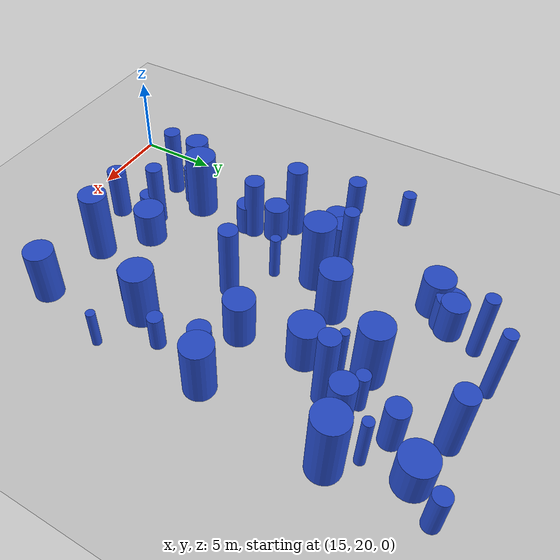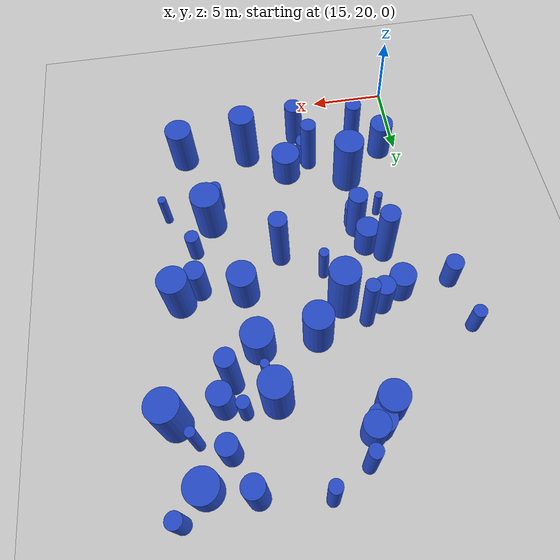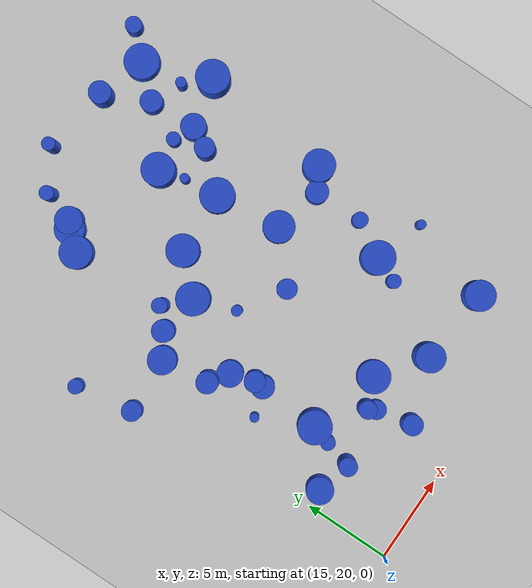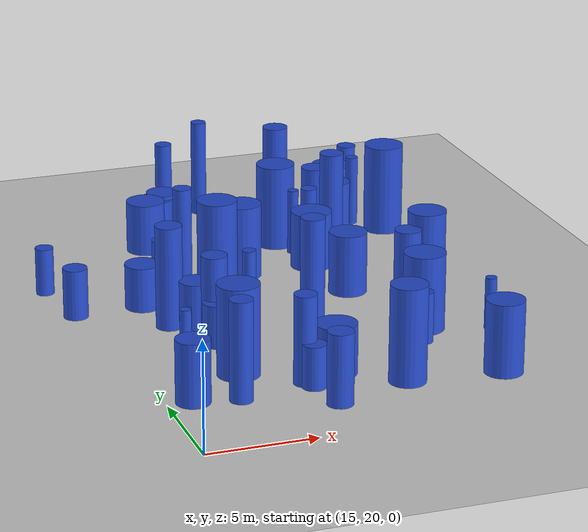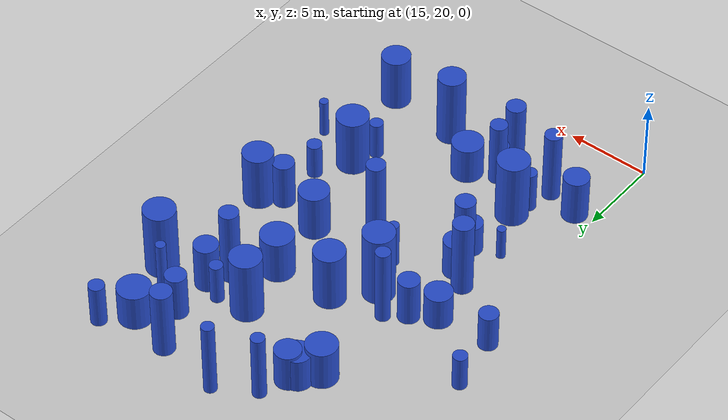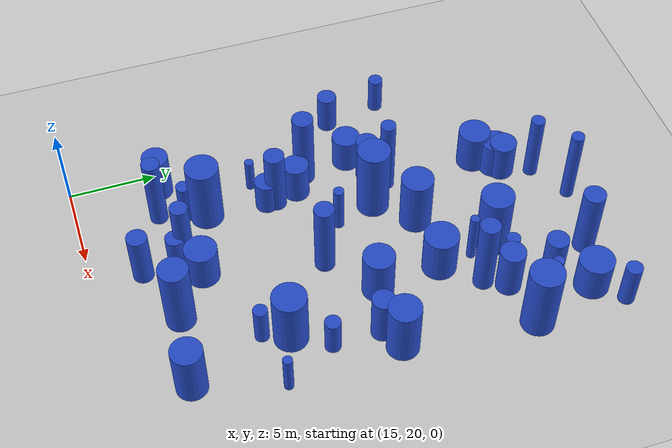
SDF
<sdf version="1.6">
 <world name="default">
  <model name="ground_plane">
   <static>1</static>
   <link name="link">
    <collision name="collision">
     <geometry><plane><normal>0 0 1</normal><size>100 100</size></plane></geometry>
     <surface><friction><ode><mu>100</mu><mu2>50</mu2></ode></friction></surface>
    </collision>
    <visual name="visual">
     <cast_shadows>0</cast_shadows>
     <geometry><plane><normal>0 0 1</normal><size>100 100</size></plane></geometry>
     <material>
      <script><uri>file://media/materials/scripts/gazebo.material</uri><name>Gazebo/Grey</name></script>
     </material>
    </visual>
   </link>
  </model>
  <model name="10">
   <static>0</static>
   <link name="link">
    <inertial>
     <mass>2</mass>
     <inertia><ixx>3.37741</ixx><ixy>0</ixy><ixz>0</ixz><iyy>3.37741</iyy><iyz>0</iyz><izz>0.399415</izz></inertia>
    </inertial>
    <collision name="collision">
     <geometry><cylinder><length>4.36649</length><radius>0.631993</radius></cylinder></geometry>
     <surface><contact><collide_without_contact>1</collide_without_contact></contact></surface>
    </collision>
    <visual name="visual">
     <geometry><cylinder><length>4.36649</length><radius>0.631993</radius></cylinder></geometry>
     <material>
      <script><uri>file://media/materials/scripts/gazebo.material</uri><name>Gazebo/Blue</name></script>
     </material>
    </visual>
    <gravity>0</gravity>
   </link>
   <pose>27.4503 47.0755 2.18325 0 -0 0</pose>
  </model>
  <model name="11">
   <static>0</static>
   <link name="link">
    <inertial>
     <mass>2</mass>
     <inertia><ixx>1.88105</ixx><ixy>0</ixy><ixz>0</ixz><iyy>1.88105</iyy><iyz>0</iyz><izz>0.812984</izz></inertia>
    </inertial>
    <collision name="collision">
     <geometry><cylinder><length>2.97445</length><radius>0.901656</radius></cylinder></geometry>
     <surface><contact><collide_without_contact>1</collide_without_contact></contact></surface>
    </collision>
    <visual name="visual">
     <geometry><cylinder><length>2.97445</length><radius>0.901656</radius></cylinder></geometry>
     <material>
      <script><uri>file://media/materials/scripts/gazebo.material</uri><name>Gazebo/Blue</name></script>
     </material>
    </visual>
    <gravity>0</gravity>
   </link>
   <pose>26.8547 34.9896 1.48722 0 -0 0</pose>
  </model>
  <model name="13">
   <static>0</static>
   <link name="link">
    <inertial>
     <mass>2</mass>
     <inertia><ixx>2.71597</ixx><ixy>0</ixy><ixz>0</ixz><iyy>2.71597</iyy><iyz>0</iyz><izz>0.923373</izz></inertia>
    </inertial>
    <collision name="collision">
     <geometry><cylinder><length>3.67773</length><radius>0.960923</radius></cylinder></geometry>
     <surface><contact><collide_without_contact>1</collide_without_contact></contact></surface>
    </collision>
    <visual name="visual">
     <geometry><cylinder><length>3.67773</length><radius>0.960923</radius></cylinder></geometry>
     <material>
      <script><uri>file://media/materials/scripts/gazebo.material</uri><name>Gazebo/Blue</name></script>
     </material>
    </visual>
    <gravity>0</gravity>
   </link>
   <pose>28.4623 29.5513 1.83887 0 -0 0</pose>
  </model>
  <model name="16">
   <static>0</static>
   <link name="link">
    <inertial>
     <mass>2</mass>
     <inertia><ixx>1.57186</ixx><ixy>0</ixy><ixz>0</ixz><iyy>1.57186</iyy><iyz>0</iyz><izz>0.39585</izz></inertia>
    </inertial>
    <collision name="collision">
     <geometry><cylinder><length>2.87117</length><radius>0.629166</radius></cylinder></geometry>
     <surface><contact><collide_without_contact>1</collide_without_contact></contact></surface>
    </collision>
    <visual name="visual">
     <geometry><cylinder><length>2.87117</length><radius>0.629166</radius></cylinder></geometry>
     <material>
      <script><uri>file://media/materials/scripts/gazebo.material</uri><name>Gazebo/Blue</name></script>
     </material>
    </visual>
    <gravity>0</gravity>
   </link>
   <pose>28.6502 44.5978 1.43558 0 -0 0</pose>
  </model>
  <model name="27">
   <static>0</static>
   <link name="link">
    <inertial>
     <mass>2</mass>
     <inertia><ixx>3.29031</ixx><ixy>0</ixy><ixz>0</ixz><iyy>3.29031</iyy><iyz>0</iyz><izz>0.876091</izz></inertia>
    </inertial>
    <collision name="collision">
     <geometry><cylinder><length>4.13686</length><radius>0.935998</radius></cylinder></geometry>
     <surface><contact><collide_without_contact>1</collide_without_contact></contact></surface>
    </collision>
    <visual name="visual">
     <geometry><cylinder><length>4.13686</length><radius>0.935998</radius></cylinder></geometry>
     <material>
      <script><uri>file://media/materials/scripts/gazebo.material</uri><name>Gazebo/Blue</name></script>
     </material>
    </visual>
    <gravity>0</gravity>
   </link>
   <pose>25.7568 42.1534 2.06843 0 -0 0</pose>
  </model>
  <model name="28">
   <static>0</static>
   <link name="link">
    <inertial>
     <mass>2</mass>
     <inertia><ixx>3.70127</ixx><ixy>0</ixy><ixz>0</ixz><iyy>3.70127</iyy><iyz>0</iyz><izz>0.908045</izz></inertia>
    </inertial>
    <collision name="collision">
     <geometry><cylinder><length>4.41401</length><radius>0.952914</radius></cylinder></geometry>
     <surface><contact><collide_without_contact>1</collide_without_contact></contact></surface>
    </collision>
    <visual name="visual">
     <geometry><cylinder><length>4.41401</length><radius>0.952914</radius></cylinder></geometry>
     <material>
      <script><uri>file://media/materials/scripts/gazebo.material</uri><name>Gazebo/Blue</name></script>
     </material>
    </visual>
    <gravity>0</gravity>
   </link>
   <pose>31.5585 42.4736 2.20701 0 -0 0</pose>
  </model>
  <model name="31">
   <static>0</static>
   <link name="link">
    <inertial>
     <mass>2</mass>
     <inertia>
      <ixx>0.960927</ixx>
      <ixy>0</ixy>
      <ixz>0</ixz>
      <iyy>0.960927</iyy>
      <iyz>0</iyz>
      <izz>0.413143</izz>
     </inertia>
    </inertial>
    <collision name="collision">
     <geometry><cylinder><length>2.12747</length><radius>0.642762</radius></cylinder></geometry>
     <surface><contact><collide_without_contact>1</collide_without_contact></contact></surface>
    </collision>
    <visual name="visual">
     <geometry><cylinder><length>2.12747</length><radius>0.642762</radius></cylinder></geometry>
     <material>
      <script><uri>file://media/materials/scripts/gazebo.material</uri><name>Gazebo/Blue</name></script>
     </material>
    </visual>
    <gravity>0</gravity>
   </link>
   <pose>29.9876 46.2303 1.06374 0 -0 0</pose>
  </model>
  <model name="39">
   <static>0</static>
   <link name="link">
    <inertial>
     <mass>2</mass>
     <inertia><ixx>1.53544</ixx><ixy>0</ixy><ixz>0</ixz><iyy>1.53544</iyy><iyz>0</iyz><izz>0.411838</izz></inertia>
    </inertial>
    <collision name="collision">
     <geometry><cylinder><length>2.82438</length><radius>0.641746</radius></cylinder></geometry>
     <surface><contact><collide_without_contact>1</collide_without_contact></contact></surface>
    </collision>
    <visual name="visual">
     <geometry><cylinder><length>2.82438</length><radius>0.641746</radius></cylinder></geometry>
     <material>
      <script><uri>file://media/materials/scripts/gazebo.material</uri><name>Gazebo/Blue</name></script>
     </material>
    </visual>
    <gravity>0</gravity>
   </link>
   <pose>18.6007 37.0653 1.41219 0 -0 0</pose>
  </model>
  <model name="42">
   <static>0</static>
   <link name="link">
    <inertial>
     <mass>2</mass>
     <inertia><ixx>2.01453</ixx><ixy>0</ixy><ixz>0</ixz><iyy>2.01453</iyy><iyz>0</iyz><izz>0.344549</izz></inertia>
    </inertial>
    <collision name="collision">
     <geometry><cylinder><length>3.32468</length><radius>0.586983</radius></cylinder></geometry>
     <surface><contact><collide_without_contact>1</collide_without_contact></contact></surface>
    </collision>
    <visual name="visual">
     <geometry><cylinder><length>3.32468</length><radius>0.586983</radius></cylinder></geometry>
     <material>
      <script><uri>file://media/materials/scripts/gazebo.material</uri><name>Gazebo/Blue</name></script>
     </material>
    </visual>
    <gravity>0</gravity>
   </link>
   <pose>21.9562 22.9154 1.66234 0 -0 0</pose>
  </model>
  <model name="47">
   <static>0</static>
   <link name="link">
    <inertial>
     <mass>2</mass>
     <inertia><ixx>2.29041</ixx><ixy>0</ixy><ixz>0</ixz><iyy>2.29041</iyy><iyz>0</iyz><izz>0.757429</izz></inertia>
    </inertial>
    <collision name="collision">
     <geometry><cylinder><length>3.38677</length><radius>0.870304</radius></cylinder></geometry>
     <surface><contact><collide_without_contact>1</collide_without_contact></contact></surface>
    </collision>
    <visual name="visual">
     <geometry><cylinder><length>3.38677</length><radius>0.870304</radius></cylinder></geometry>
     <material>
      <script><uri>file://media/materials/scripts/gazebo.material</uri><name>Gazebo/Blue</name></script>
     </material>
    </visual>
    <gravity>0</gravity>
   </link>
   <pose>29.8515 23.8039 1.69338 0 -0 0</pose>
  </model>
  <model name="48">
   <static>0</static>
   <link name="link">
    <inertial>
     <mass>2</mass>
     <inertia>
      <ixx>0.820157</ixx>
      <ixy>0</ixy>
      <ixz>0</ixz>
      <iyy>0.820157</iyy>
      <iyz>0</iyz>
      <izz>0.29591</izz>
     </inertia>
    </inertial>
    <collision name="collision">
     <geometry><cylinder><length>2.00829</length><radius>0.543976</radius></cylinder></geometry>
     <surface><contact><collide_without_contact>1</collide_without_contact></contact></surface>
    </collision>
    <visual name="visual">
     <geometry><cylinder><length>2.00829</length><radius>0.543976</radius></cylinder></geometry>
     <material>
      <script><uri>file://media/materials/scripts/gazebo.material</uri><name>Gazebo/Blue</name></script>
     </material>
    </visual>
    <gravity>0</gravity>
   </link>
   <pose>21.5362 24.945 1.00414 0 -0 0</pose>
  </model>
  <model name="58">
   <static>0</static>
   <link name="link">
    <inertial>
     <mass>2</mass>
     <inertia>
      <ixx>0.763986</ixx>
      <ixy>0</ixy>
      <ixz>0</ixz>
      <iyy>0.763986</iyy>
      <iyz>0</iyz>
      <izz>0.0695727</izz>
     </inertia>
    </inertial>
    <collision name="collision">
     <geometry><cylinder><length>2.0917</length><radius>0.263766</radius></cylinder></geometry>
     <surface><contact><collide_without_contact>1</collide_without_contact></contact></surface>
    </collision>
    <visual name="visual">
     <geometry><cylinder><length>2.0917</length><radius>0.263766</radius></cylinder></geometry>
     <material>
      <script><uri>file://media/materials/scripts/gazebo.material</uri><name>Gazebo/Blue</name></script>
     </material>
    </visual>
    <gravity>0</gravity>
   </link>
   <pose>17.4453 30.2732 1.04585 0 -0 0</pose>
  </model>
  <model name="59">
   <static>0</static>
   <link name="link">
    <inertial>
     <mass>2</mass>
     <inertia><ixx>4.03228</ixx><ixy>0</ixy><ixz>0</ixz><iyy>4.03228</iyy><iyz>0</iyz><izz>0.883964</izz></inertia>
    </inertial>
    <collision name="collision">
     <geometry><cylinder><length>4.64131</length><radius>0.940194</radius></cylinder></geometry>
     <surface><contact><collide_without_contact>1</collide_without_contact></contact></surface>
    </collision>
    <visual name="visual">
     <geometry><cylinder><length>4.64131</length><radius>0.940194</radius></cylinder></geometry>
     <material>
      <script><uri>file://media/materials/scripts/gazebo.material</uri><name>Gazebo/Blue</name></script>
     </material>
    </visual>
    <gravity>0</gravity>
   </link>
   <pose>20.989 36.6588 2.32066 0 -0 0</pose>
  </model>
  <model name="62">
   <static>0</static>
   <link name="link">
    <inertial>
     <mass>2</mass>
     <inertia>
      <ixx>1.43756</ixx>
      <ixy>0</ixy>
      <ixz>0</ixz>
      <iyy>1.43756</iyy>
      <iyz>0</iyz>
      <izz>0.0997428</izz>
     </inertia>
    </inertial>
    <collision name="collision">
     <geometry><cylinder><length>2.8855</length><radius>0.315821</radius></cylinder></geometry>
     <surface><contact><collide_without_contact>1</collide_without_contact></contact></surface>
    </collision>
    <visual name="visual">
     <geometry><cylinder><length>2.8855</length><radius>0.315821</radius></cylinder></geometry>
     <material>
      <script><uri>file://media/materials/scripts/gazebo.material</uri><name>Gazebo/Blue</name></script>
     </material>
    </visual>
    <gravity>0</gravity>
   </link>
   <pose>21.7733 34.3418 1.44275 0 -0 0</pose>
  </model>
  <model name="63">
   <static>0</static>
   <link name="link">
    <inertial>
     <mass>2</mass>
     <inertia><ixx>1.03289</ixx><ixy>0</ixy><ixz>0</ixz><iyy>1.03289</iyy><iyz>0</iyz><izz>0.164469</izz></inertia>
    </inertial>
    <collision name="collision">
     <geometry><cylinder><length>2.38829</length><radius>0.405548</radius></cylinder></geometry>
     <surface><contact><collide_without_contact>1</collide_without_contact></contact></surface>
    </collision>
    <visual name="visual">
     <geometry><cylinder><length>2.38829</length><radius>0.405548</radius></cylinder></geometry>
     <material>
      <script><uri>file://media/materials/scripts/gazebo.material</uri><name>Gazebo/Blue</name></script>
     </material>
    </visual>
    <gravity>0</gravity>
   </link>
   <pose>27.9011 28.096 1.19414 0 -0 0</pose>
  </model>
  <model name="68">
   <static>0</static>
   <link name="link">
    <inertial>
     <mass>2</mass>
     <inertia><ixx>1.17766</ixx><ixy>0</ixy><ixz>0</ixz><iyy>1.17766</iyy><iyz>0</iyz><izz>0.157599</izz></inertia>
    </inertial>
    <collision name="collision">
     <geometry><cylinder><length>2.56772</length><radius>0.396987</radius></cylinder></geometry>
     <surface><contact><collide_without_contact>1</collide_without_contact></contact></surface>
    </collision>
    <visual name="visual">
     <geometry><cylinder><length>2.56772</length><radius>0.396987</radius></cylinder></geometry>
     <material>
      <script><uri>file://media/materials/scripts/gazebo.material</uri><name>Gazebo/Blue</name></script>
     </material>
    </visual>
    <gravity>0</gravity>
   </link>
   <pose>27.6168 42.4632 1.28386 0 -0 0</pose>
  </model>
  <model name="70">
   <static>0</static>
   <link name="link">
    <inertial>
     <mass>2</mass>
     <inertia>
      <ixx>2.04255</ixx>
      <ixy>0</ixy>
      <ixz>0</ixz>
      <iyy>2.04255</iyy>
      <iyz>0</iyz>
      <izz>0.0888972</izz>
     </inertia>
    </inertial>
    <collision name="collision">
     <geometry><cylinder><length>3.46246</length><radius>0.298156</radius></cylinder></geometry>
     <surface><contact><collide_without_contact>1</collide_without_contact></contact></surface>
    </collision>
    <visual name="visual">
     <geometry><cylinder><length>3.46246</length><radius>0.298156</radius></cylinder></geometry>
     <material>
      <script><uri>file://media/materials/scripts/gazebo.material</uri><name>Gazebo/Blue</name></script>
     </material>
    </visual>
    <gravity>0</gravity>
   </link>
   <pose>30.3781 43.7936 1.73123 0 -0 0</pose>
  </model>
  <model name="77">
   <static>0</static>
   <link name="link">
    <inertial>
     <mass>2</mass>
     <inertia>
      <ixx>1.03563</ixx>
      <ixy>0</ixy>
      <ixz>0</ixz>
      <iyy>1.03563</iyy>
      <iyz>0</iyz>
      <izz>0.0714737</izz>
     </inertia>
    </inertial>
    <collision name="collision">
     <geometry><cylinder><length>2.44936</length><radius>0.267346</radius></cylinder></geometry>
     <surface><contact><collide_without_contact>1</collide_without_contact></contact></surface>
    </collision>
    <visual name="visual">
     <geometry><cylinder><length>2.44936</length><radius>0.267346</radius></cylinder></geometry>
     <material>
      <script><uri>file://media/materials/scripts/gazebo.material</uri><name>Gazebo/Blue</name></script>
     </material>
    </visual>
    <gravity>0</gravity>
   </link>
   <pose>31.3145 28.5993 1.22468 0 -0 0</pose>
  </model>
  <model name="79">
   <static>0</static>
   <link name="link">
    <inertial>
     <mass>2</mass>
     <inertia><ixx>4.14774</ixx><ixy>0</ixy><ixz>0</ixz><iyy>4.14774</iyy><iyz>0</iyz><izz>0.331345</izz></inertia>
    </inertial>
    <collision name="collision">
     <geometry><cylinder><length>4.88799</length><radius>0.575626</radius></cylinder></geometry>
     <surface><contact><collide_without_contact>1</collide_without_contact></contact></surface>
    </collision>
    <visual name="visual">
     <geometry><cylinder><length>4.88799</length><radius>0.575626</radius></cylinder></geometry>
     <material>
      <script><uri>file://media/materials/scripts/gazebo.material</uri><name>Gazebo/Blue</name></script>
     </material>
    </visual>
    <gravity>0</gravity>
   </link>
   <pose>28.1269 40.6889 2.44399 0 -0 0</pose>
  </model>
  <model name="90">
   <static>0</static>
   <link name="link">
    <inertial>
     <mass>2</mass>
     <inertia><ixx>3.14456</ixx><ixy>0</ixy><ixz>0</ixz><iyy>3.14456</iyy><iyz>0</iyz><izz>0.16502</izz></inertia>
    </inertial>
    <collision name="collision">
     <geometry><cylinder><length>4.28629</length><radius>0.406226</radius></cylinder></geometry>
     <surface><contact><collide_without_contact>1</collide_without_contact></contact></surface>
    </collision>
    <visual name="visual">
     <geometry><cylinder><length>4.28629</length><radius>0.406226</radius></cylinder></geometry>
     <material>
      <script><uri>file://media/materials/scripts/gazebo.material</uri><name>Gazebo/Blue</name></script>
     </material>
    </visual>
    <gravity>0</gravity>
   </link>
   <pose>21.3311 46.4355 2.14315 0 -0 0</pose>
  </model>
  <model name="95">
   <static>0</static>
   <link name="link">
    <inertial>
     <mass>2</mass>
     <inertia><ixx>1.74657</ixx><ixy>0</ixy><ixz>0</ixz><iyy>1.74657</iyy><iyz>0</iyz><izz>0.521545</izz></inertia>
    </inertial>
    <collision name="collision">
     <geometry><cylinder><length>2.98577</length><radius>0.722181</radius></cylinder></geometry>
     <surface><contact><collide_without_contact>1</collide_without_contact></contact></surface>
    </collision>
    <visual name="visual">
     <geometry><cylinder><length>2.98577</length><radius>0.722181</radius></cylinder></geometry>
     <material>
      <script><uri>file://media/materials/scripts/gazebo.material</uri><name>Gazebo/Blue</name></script>
     </material>
    </visual>
    <gravity>0</gravity>
   </link>
   <pose>28.7882 41.9118 1.49288 0 -0 0</pose>
  </model>
  <model name="103">
   <static>0</static>
   <link name="link">
    <inertial>
     <mass>2</mass>
     <inertia><ixx>1.77324</ixx><ixy>0</ixy><ixz>0</ixz><iyy>1.77324</iyy><iyz>0</iyz><izz>0.972228</izz></inertia>
    </inertial>
    <collision name="collision">
     <geometry><cylinder><length>2.77898</length><radius>0.986016</radius></cylinder></geometry>
     <surface><contact><collide_without_contact>1</collide_without_contact></contact></surface>
    </collision>
    <visual name="visual">
     <geometry><cylinder><length>2.77898</length><radius>0.986016</radius></cylinder></geometry>
     <material>
      <script><uri>file://media/materials/scripts/gazebo.material</uri><name>Gazebo/Blue</name></script>
     </material>
    </visual>
    <gravity>0</gravity>
   </link>
   <pose>26.3975 38.7434 1.38949 0 -0 0</pose>
  </model>
  <model name="108">
   <static>0</static>
   <link name="link">
    <inertial>
     <mass>2</mass>
     <inertia>
      <ixx>0.946671</ixx>
      <ixy>0</ixy>
      <ixz>0</ixz>
      <iyy>0.946671</iyy>
      <iyz>0</iyz>
      <izz>0.17945</izz>
     </inertia>
    </inertial>
    <collision name="collision">
     <geometry><cylinder><length>2.26753</length><radius>0.423616</radius></cylinder></geometry>
     <surface><contact><collide_without_contact>1</collide_without_contact></contact></surface>
    </collision>
    <visual name="visual">
     <geometry><cylinder><length>2.26753</length><radius>0.423616</radius></cylinder></geometry>
     <material>
      <script><uri>file://media/materials/scripts/gazebo.material</uri><name>Gazebo/Blue</name></script>
     </material>
    </visual>
    <gravity>0</gravity>
   </link>
   <pose>13.3868 39.3535 1.13376 0 -0 0</pose>
  </model>
  <model name="111">
   <static>0</static>
   <link name="link">
    <inertial>
     <mass>2</mass>
     <inertia><ixx>1.70817</ixx><ixy>0</ixy><ixz>0</ixz><iyy>1.70817</iyy><iyz>0</iyz><izz>0.588369</izz></inertia>
    </inertial>
    <collision name="collision">
     <geometry><cylinder><length>2.91271</length><radius>0.767052</radius></cylinder></geometry>
     <surface><contact><collide_without_contact>1</collide_without_contact></contact></surface>
    </collision>
    <visual name="visual">
     <geometry><cylinder><length>2.91271</length><radius>0.767052</radius></cylinder></geometry>
     <material>
      <script><uri>file://media/materials/scripts/gazebo.material</uri><name>Gazebo/Blue</name></script>
     </material>
    </visual>
    <gravity>0</gravity>
   </link>
   <pose>16.162 25.0947 1.45636 0 -0 0</pose>
  </model>
  <model name="114">
   <static>0</static>
   <link name="link">
    <inertial>
     <mass>2</mass>
     <inertia><ixx>1.3772</ixx><ixy>0</ixy><ixz>0</ixz><iyy>1.3772</iyy><iyz>0</iyz><izz>0.977936</izz></inertia>
    </inertial>
    <collision name="collision">
     <geometry><cylinder><length>2.30855</length><radius>0.988906</radius></cylinder></geometry>
     <surface><contact><collide_without_contact>1</collide_without_contact></contact></surface>
    </collision>
    <visual name="visual">
     <geometry><cylinder><length>2.30855</length><radius>0.988906</radius></cylinder></geometry>
     <material>
      <script><uri>file://media/materials/scripts/gazebo.material</uri><name>Gazebo/Blue</name></script>
     </material>
    </visual>
    <gravity>0</gravity>
   </link>
   <pose>30.1834 46.28 1.15427 0 -0 0</pose>
  </model>
  <model name="117">
   <static>0</static>
   <link name="link">
    <inertial>
     <mass>2</mass>
     <inertia><ixx>2.96429</ixx><ixy>0</ixy><ixz>0</ixz><iyy>2.96429</iyy><iyz>0</iyz><izz>0.263078</izz></inertia>
    </inertial>
    <collision name="collision">
     <geometry><cylinder><length>4.12268</length><radius>0.512911</radius></cylinder></geometry>
     <surface><contact><collide_without_contact>1</collide_without_contact></contact></surface>
    </collision>
    <visual name="visual">
     <geometry><cylinder><length>4.12268</length><radius>0.512911</radius></cylinder></geometry>
     <material>
      <script><uri>file://media/materials/scripts/gazebo.material</uri><name>Gazebo/Blue</name></script>
     </material>
    </visual>
    <gravity>0</gravity>
   </link>
   <pose>21.3006 25.4426 2.06134 0 -0 0</pose>
  </model>
  <model name="132">
   <static>0</static>
   <link name="link">
    <inertial>
     <mass>2</mass>
     <inertia><ixx>3.92176</ixx><ixy>0</ixy><ixz>0</ixz><iyy>3.92176</iyy><iyz>0</iyz><izz>0.324121</izz></inertia>
    </inertial>
    <collision name="collision">
     <geometry><cylinder><length>4.74955</length><radius>0.569316</radius></cylinder></geometry>
     <surface><contact><collide_without_contact>1</collide_without_contact></contact></surface>
    </collision>
    <visual name="visual">
     <geometry><cylinder><length>4.74955</length><radius>0.569316</radius></cylinder></geometry>
     <material>
      <script><uri>file://media/materials/scripts/gazebo.material</uri><name>Gazebo/Blue</name></script>
     </material>
    </visual>
    <gravity>0</gravity>
   </link>
   <pose>24.2784 32.7345 2.37477 0 -0 0</pose>
  </model>
  <model name="134">
   <static>0</static>
   <link name="link">
    <inertial>
     <mass>2</mass>
     <inertia><ixx>3.43491</ixx><ixy>0</ixy><ixz>0</ixz><iyy>3.43491</iyy><iyz>0</iyz><izz>0.918392</izz></inertia>
    </inertial>
    <collision name="collision">
     <geometry><cylinder><length>4.22543</length><radius>0.958327</radius></cylinder></geometry>
     <surface><contact><collide_without_contact>1</collide_without_contact></contact></surface>
    </collision>
    <visual name="visual">
     <geometry><cylinder><length>4.22543</length><radius>0.958327</radius></cylinder></geometry>
     <material>
      <script><uri>file://media/materials/scripts/gazebo.material</uri><name>Gazebo/Blue</name></script>
     </material>
    </visual>
    <gravity>0</gravity>
   </link>
   <pose>18.9092 27.2959 2.11272 0 -0 0</pose>
  </model>
  <model name="139">
   <static>0</static>
   <link name="link">
    <inertial>
     <mass>2</mass>
     <inertia><ixx>2.60105</ixx><ixy>0</ixy><ixz>0</ixz><iyy>2.60105</iyy><iyz>0</iyz><izz>0.858486</izz></inertia>
    </inertial>
    <collision name="collision">
     <geometry><cylinder><length>3.60982</length><radius>0.926545</radius></cylinder></geometry>
     <surface><contact><collide_without_contact>1</collide_without_contact></contact></surface>
    </collision>
    <visual name="visual">
     <geometry><cylinder><length>3.60982</length><radius>0.926545</radius></cylinder></geometry>
     <material>
      <script><uri>file://media/materials/scripts/gazebo.material</uri><name>Gazebo/Blue</name></script>
     </material>
    </visual>
    <gravity>0</gravity>
   </link>
   <pose>22.8437 38.6061 1.80491 0 -0 0</pose>
  </model>
  <model name="146">
   <static>0</static>
   <link name="link">
    <inertial>
     <mass>2</mass>
     <inertia><ixx>3.90844</ixx><ixy>0</ixy><ixz>0</ixz><iyy>3.90844</iyy><iyz>0</iyz><izz>0.141824</izz></inertia>
    </inertial>
    <collision name="collision">
     <geometry><cylinder><length>4.79845</length><radius>0.376595</radius></cylinder></geometry>
     <surface><contact><collide_without_contact>1</collide_without_contact></contact></surface>
    </collision>
    <visual name="visual">
     <geometry><cylinder><length>4.79845</length><radius>0.376595</radius></cylinder></geometry>
     <material>
      <script><uri>file://media/materials/scripts/gazebo.material</uri><name>Gazebo/Blue</name></script>
     </material>
    </visual>
    <gravity>0</gravity>
   </link>
   <pose>23.5936 47.7885 2.39923 0 -0 0</pose>
  </model>
  <model name="147">
   <static>0</static>
   <link name="link">
    <inertial>
     <mass>2</mass>
     <inertia><ixx>1.17156</ixx><ixy>0</ixy><ixz>0</ixz><iyy>1.17156</iyy><iyz>0</iyz><izz>0.711306</izz></inertia>
    </inertial>
    <collision name="collision">
     <geometry><cylinder><length>2.21256</length><radius>0.84339</radius></cylinder></geometry>
     <surface><contact><collide_without_contact>1</collide_without_contact></contact></surface>
    </collision>
    <visual name="visual">
     <geometry><cylinder><length>2.21256</length><radius>0.84339</radius></cylinder></geometry>
     <material>
      <script><uri>file://media/materials/scripts/gazebo.material</uri><name>Gazebo/Blue</name></script>
     </material>
    </visual>
    <gravity>0</gravity>
   </link>
   <pose>20.3388 44.4373 1.10628 0 -0 0</pose>
  </model>
  <model name="156">
   <static>0</static>
   <link name="link">
    <inertial>
     <mass>2</mass>
     <inertia>
      <ixx>0.933154</ixx>
      <ixy>0</ixy>
      <ixz>0</ixz>
      <iyy>0.933154</iyy>
      <iyz>0</iyz>
      <izz>0.201317</izz>
     </inertia>
    </inertial>
    <collision name="collision">
     <geometry><cylinder><length>2.23494</length><radius>0.448684</radius></cylinder></geometry>
     <surface><contact><collide_without_contact>1</collide_without_contact></contact></surface>
    </collision>
    <visual name="visual">
     <geometry><cylinder><length>2.23494</length><radius>0.448684</radius></cylinder></geometry>
     <material>
      <script><uri>file://media/materials/scripts/gazebo.material</uri><name>Gazebo/Blue</name></script>
     </material>
    </visual>
    <gravity>0</gravity>
   </link>
   <pose>29.659 31.5125 1.11747 0 -0 0</pose>
  </model>
  <model name="158">
   <static>0</static>
   <link name="link">
    <inertial>
     <mass>2</mass>
     <inertia><ixx>1.3482</ixx><ixy>0</ixy><ixz>0</ixz><iyy>1.3482</iyy><iyz>0</iyz><izz>0.881252</izz></inertia>
    </inertial>
    <collision name="collision">
     <geometry><cylinder><length>2.33355</length><radius>0.93875</radius></cylinder></geometry>
     <surface><contact><collide_without_contact>1</collide_without_contact></contact></surface>
    </collision>
    <visual name="visual">
     <geometry><cylinder><length>2.33355</length><radius>0.93875</radius></cylinder></geometry>
     <material>
      <script><uri>file://media/materials/scripts/gazebo.material</uri><name>Gazebo/Blue</name></script>
     </material>
    </visual>
    <gravity>0</gravity>
   </link>
   <pose>22.9559 26.086 1.16677 0 -0 0</pose>
  </model>
  <model name="165">
   <static>0</static>
   <link name="link">
    <inertial>
     <mass>2</mass>
     <inertia><ixx>2.51292</ixx><ixy>0</ixy><ixz>0</ixz><iyy>2.51292</iyy><iyz>0</iyz><izz>0.832812</izz></inertia>
    </inertial>
    <collision name="collision">
     <geometry><cylinder><length>3.5467</length><radius>0.912586</radius></cylinder></geometry>
     <surface><contact><collide_without_contact>1</collide_without_contact></contact></surface>
    </collision>
    <visual name="visual">
     <geometry><cylinder><length>3.5467</length><radius>0.912586</radius></cylinder></geometry>
     <material>
      <script><uri>file://media/materials/scripts/gazebo.material</uri><name>Gazebo/Blue</name></script>
     </material>
    </visual>
    <gravity>0</gravity>
   </link>
   <pose>30.8305 35.0294 1.77335 0 -0 0</pose>
  </model>
  <model name="174">
   <static>0</static>
   <link name="link">
    <inertial>
     <mass>2</mass>
     <inertia><ixx>3.70872</ixx><ixy>0</ixy><ixz>0</ixz><iyy>3.70872</iyy><iyz>0</iyz><izz>0.698748</izz></inertia>
    </inertial>
    <collision name="collision">
     <geometry><cylinder><length>4.48955</length><radius>0.835911</radius></cylinder></geometry>
     <surface><contact><collide_without_contact>1</collide_without_contact></contact></surface>
    </collision>
    <visual name="visual">
     <geometry><cylinder><length>4.48955</length><radius>0.835911</radius></cylinder></geometry>
     <material>
      <script><uri>file://media/materials/scripts/gazebo.material</uri><name>Gazebo/Blue</name></script>
     </material>
    </visual>
    <gravity>0</gravity>
   </link>
   <pose>25.5349 24.2179 2.24478 0 -0 0</pose>
  </model>
  <model name="183">
   <static>0</static>
   <link name="link">
    <inertial>
     <mass>2</mass>
     <inertia><ixx>1.0876</ixx><ixy>0</ixy><ixz>0</ixz><iyy>1.0876</iyy><iyz>0</iyz><izz>0.670866</izz></inertia>
    </inertial>
    <collision name="collision">
     <geometry><cylinder><length>2.12439</length><radius>0.819064</radius></cylinder></geometry>
     <surface><contact><collide_without_contact>1</collide_without_contact></contact></surface>
    </collision>
    <visual name="visual">
     <geometry><cylinder><length>2.12439</length><radius>0.819064</radius></cylinder></geometry>
     <material>
      <script><uri>file://media/materials/scripts/gazebo.material</uri><name>Gazebo/Blue</name></script>
     </material>
    </visual>
    <gravity>0</gravity>
   </link>
   <pose>17.2233 36.2243 1.06219 0 -0 0</pose>
  </model>
  <model name="185">
   <static>0</static>
   <link name="link">
    <inertial>
     <mass>2</mass>
     <inertia><ixx>3.66198</ixx><ixy>0</ixy><ixz>0</ixz><iyy>3.66198</iyy><iyz>0</iyz><izz>0.269309</izz></inertia>
    </inertial>
    <collision name="collision">
     <geometry><cylinder><length>4.60043</length><radius>0.51895</radius></cylinder></geometry>
     <surface><contact><collide_without_contact>1</collide_without_contact></contact></surface>
    </collision>
    <visual name="visual">
     <geometry><cylinder><length>4.60043</length><radius>0.51895</radius></cylinder></geometry>
     <material>
      <script><uri>file://media/materials/scripts/gazebo.material</uri><name>Gazebo/Blue</name></script>
     </material>
    </visual>
    <gravity>0</gravity>
   </link>
   <pose>18.149 24.6254 2.30022 0 -0 0</pose>
  </model>
  <model name="201">
   <static>0</static>
   <link name="link">
    <inertial>
     <mass>2</mass>
     <inertia><ixx>1.67988</ixx><ixy>0</ixy><ixz>0</ixz><iyy>1.67988</iyy><iyz>0</iyz><izz>0.413438</izz></inertia>
    </inertial>
    <collision name="collision">
     <geometry><cylinder><length>2.97304</length><radius>0.642992</radius></cylinder></geometry>
     <surface><contact><collide_without_contact>1</collide_without_contact></contact></surface>
    </collision>
    <visual name="visual">
     <geometry><cylinder><length>2.97304</length><radius>0.642992</radius></cylinder></geometry>
     <material>
      <script><uri>file://media/materials/scripts/gazebo.material</uri><name>Gazebo/Blue</name></script>
     </material>
    </visual>
    <gravity>0</gravity>
   </link>
   <pose>29.5918 34.3148 1.48652 0 -0 0</pose>
  </model>
  <model name="202">
   <static>0</static>
   <link name="link">
    <inertial>
     <mass>2</mass>
     <inertia><ixx>2.89603</ixx><ixy>0</ixy><ixz>0</ixz><iyy>2.89603</iyy><iyz>0</iyz><izz>0.355142</izz></inertia>
    </inertial>
    <collision name="collision">
     <geometry><cylinder><length>4.03866</length><radius>0.595938</radius></cylinder></geometry>
     <surface><contact><collide_without_contact>1</collide_without_contact></contact></surface>
    </collision>
    <visual name="visual">
     <geometry><cylinder><length>4.03866</length><radius>0.595938</radius></cylinder></geometry>
     <material>
      <script><uri>file://media/materials/scripts/gazebo.material</uri><name>Gazebo/Blue</name></script>
     </material>
    </visual>
    <gravity>0</gravity>
   </link>
   <pose>19.1386 31.3744 2.01933 0 -0 0</pose>
  </model>
  <model name="220">
   <static>0</static>
   <link name="link">
    <inertial>
     <mass>2</mass>
     <inertia><ixx>1.2348</ixx><ixy>0</ixy><ixz>0</ixz><iyy>1.2348</iyy><iyz>0</iyz><izz>0.175576</izz></inertia>
    </inertial>
    <collision name="collision">
     <geometry><cylinder><length>2.62337</length><radius>0.419018</radius></cylinder></geometry>
     <surface><contact><collide_without_contact>1</collide_without_contact></contact></surface>
    </collision>
    <visual name="visual">
     <geometry><cylinder><length>2.62337</length><radius>0.419018</radius></cylinder></geometry>
     <material>
      <script><uri>file://media/materials/scripts/gazebo.material</uri><name>Gazebo/Blue</name></script>
     </material>
    </visual>
    <gravity>0</gravity>
   </link>
   <pose>18.5545 26.1727 1.31169 0 -0 0</pose>
  </model>
  <model name="221">
   <static>0</static>
   <link name="link">
    <inertial>
     <mass>2</mass>
     <inertia><ixx>1.25885</ixx><ixy>0</ixy><ixz>0</ixz><iyy>1.25885</iyy><iyz>0</iyz><izz>0.604768</izz></inertia>
    </inertial>
    <collision name="collision">
     <geometry><cylinder><length>2.39558</length><radius>0.777668</radius></cylinder></geometry>
     <surface><contact><collide_without_contact>1</collide_without_contact></contact></surface>
    </collision>
    <visual name="visual">
     <geometry><cylinder><length>2.39558</length><radius>0.777668</radius></cylinder></geometry>
     <material>
      <script><uri>file://media/materials/scripts/gazebo.material</uri><name>Gazebo/Blue</name></script>
     </material>
    </visual>
    <gravity>0</gravity>
   </link>
   <pose>20.7351 44.7429 1.19779 0 -0 0</pose>
  </model>
  <model name="225">
   <static>0</static>
   <link name="link">
    <inertial>
     <mass>2</mass>
     <inertia><ixx>4.17331</ixx><ixy>0</ixy><ixz>0</ixz><iyy>4.17331</iyy><iyz>0</iyz><izz>0.192739</izz></inertia>
    </inertial>
    <collision name="collision">
     <geometry><cylinder><length>4.94587</length><radius>0.439021</radius></cylinder></geometry>
     <surface><contact><collide_without_contact>1</collide_without_contact></contact></surface>
    </collision>
    <visual name="visual">
     <geometry><cylinder><length>4.94587</length><radius>0.439021</radius></cylinder></geometry>
     <material>
      <script><uri>file://media/materials/scripts/gazebo.material</uri><name>Gazebo/Blue</name></script>
     </material>
    </visual>
    <gravity>0</gravity>
   </link>
   <pose>19.6943 37.9431 2.47293 0 -0 0</pose>
  </model>
  <model name="226">
   <static>0</static>
   <link name="link">
    <inertial>
     <mass>2</mass>
     <inertia>
      <ixx>0.899999</ixx>
      <ixy>0</ixy>
      <ixz>0</ixz>
      <iyy>0.899999</iyy>
      <iyz>0</iyz>
      <izz>0.446761</izz>
     </inertia>
    </inertial>
    <collision name="collision">
     <geometry><cylinder><length>2.01487</length><radius>0.668402</radius></cylinder></geometry>
     <surface><contact><collide_without_contact>1</collide_without_contact></contact></surface>
    </collision>
    <visual name="visual">
     <geometry><cylinder><length>2.01487</length><radius>0.668402</radius></cylinder></geometry>
     <material>
      <script><uri>file://media/materials/scripts/gazebo.material</uri><name>Gazebo/Blue</name></script>
     </material>
    </visual>
    <gravity>0</gravity>
   </link>
   <pose>19.0865 30.8277 1.00744 0 -0 0</pose>
  </model>
  <model name="227">
   <static>0</static>
   <link name="link">
    <inertial>
     <mass>2</mass>
     <inertia><ixx>1.48646</ixx><ixy>0</ixy><ixz>0</ixz><iyy>1.48646</iyy><iyz>0</iyz><izz>0.860408</izz></inertia>
    </inertial>
    <collision name="collision">
     <geometry><cylinder><length>2.51744</length><radius>0.927582</radius></cylinder></geometry>
     <surface><contact><collide_without_contact>1</collide_without_contact></contact></surface>
    </collision>
    <visual name="visual">
     <geometry><cylinder><length>2.51744</length><radius>0.927582</radius></cylinder></geometry>
     <material>
      <script><uri>file://media/materials/scripts/gazebo.material</uri><name>Gazebo/Blue</name></script>
     </material>
    </visual>
    <gravity>0</gravity>
   </link>
   <pose>19.4925 43.426 1.25872 0 -0 0</pose>
  </model>
  <model name="228">
   <static>0</static>
   <link name="link">
    <inertial>
     <mass>2</mass>
     <inertia><ixx>1.11134</ixx><ixy>0</ixy><ixz>0</ixz><iyy>1.11134</iyy><iyz>0</iyz><izz>0.324381</izz></inertia>
    </inertial>
    <collision name="collision">
     <geometry><cylinder><length>2.3864</length><radius>0.569545</radius></cylinder></geometry>
     <surface><contact><collide_without_contact>1</collide_without_contact></contact></surface>
    </collision>
    <visual name="visual">
     <geometry><cylinder><length>2.3864</length><radius>0.569545</radius></cylinder></geometry>
     <material>
      <script><uri>file://media/materials/scripts/gazebo.material</uri><name>Gazebo/Blue</name></script>
     </material>
    </visual>
    <gravity>0</gravity>
   </link>
   <pose>13.9903 36.0469 1.1932 0 -0 0</pose>
  </model>
  <model name="229">
   <static>0</static>
   <link name="link">
    <inertial>
     <mass>2</mass>
     <inertia><ixx>1.23386</ixx><ixy>0</ixy><ixz>0</ixz><iyy>1.23386</iyy><iyz>0</iyz><izz>0.565515</izz></inertia>
    </inertial>
    <collision name="collision">
     <geometry><cylinder><length>2.38885</length><radius>0.752008</radius></cylinder></geometry>
     <surface><contact><collide_without_contact>1</collide_without_contact></contact></surface>
    </collision>
    <visual name="visual">
     <geometry><cylinder><length>2.38885</length><radius>0.752008</radius></cylinder></geometry>
     <material>
      <script><uri>file://media/materials/scripts/gazebo.material</uri><name>Gazebo/Blue</name></script>
     </material>
    </visual>
    <gravity>0</gravity>
   </link>
   <pose>18.6936 32.7255 1.19443 0 -0 0</pose>
  </model>
  <model name="236">
   <static>0</static>
   <link name="link">
    <inertial>
     <mass>2</mass>
     <inertia>
      <ixx>1.72869</ixx>
      <ixy>0</ixy>
      <ixz>0</ixz>
      <iyy>1.72869</iyy>
      <iyz>0</iyz>
      <izz>0.0703693</izz>
     </inertia>
    </inertial>
    <collision name="collision">
     <geometry><cylinder><length>3.18764</length><radius>0.265272</radius></cylinder></geometry>
     <surface><contact><collide_without_contact>1</collide_without_contact></contact></surface>
    </collision>
    <visual name="visual">
     <geometry><cylinder><length>3.18764</length><radius>0.265272</radius></cylinder></geometry>
     <material>
      <script><uri>file://media/materials/scripts/gazebo.material</uri><name>Gazebo/Blue</name></script>
     </material>
    </visual>
    <gravity>0</gravity>
   </link>
   <pose>26.1728 40.7338 1.59382 0 -0 0</pose>
  </model>
  <model name="240">
   <static>0</static>
   <link name="link">
    <inertial>
     <mass>2</mass>
     <inertia><ixx>3.38686</ixx><ixy>0</ixy><ixz>0</ixz><iyy>3.38686</iyy><iyz>0</iyz><izz>0.16913</izz></inertia>
    </inertial>
    <collision name="collision">
     <geometry><cylinder><length>4.45126</length><radius>0.411254</radius></cylinder></geometry>
     <surface><contact><collide_without_contact>1</collide_without_contact></contact></surface>
    </collision>
    <visual name="visual">
     <geometry><cylinder><length>4.45126</length><radius>0.411254</radius></cylinder></geometry>
     <material>
      <script><uri>file://media/materials/scripts/gazebo.material</uri><name>Gazebo/Blue</name></script>
     </material>
    </visual>
    <gravity>0</gravity>
   </link>
   <pose>25.4572 24.4716 2.22563 0 -0 0</pose>
  </model>
  <model name="243">
   <static>0</static>
   <link name="link">
    <inertial>
     <mass>2</mass>
     <inertia><ixx>1.36174</ixx><ixy>0</ixy><ixz>0</ixz><iyy>1.36174</iyy><iyz>0</iyz><izz>0.22011</izz></inertia>
    </inertial>
    <collision name="collision">
     <geometry><cylinder><length>2.74046</length><radius>0.469159</radius></cylinder></geometry>
     <surface><contact><collide_without_contact>1</collide_without_contact></contact></surface>
    </collision>
    <visual name="visual">
     <geometry><cylinder><length>2.74046</length><radius>0.469159</radius></cylinder></geometry>
     <material>
      <script><uri>file://media/materials/scripts/gazebo.material</uri><name>Gazebo/Blue</name></script>
     </material>
    </visual>
    <gravity>0</gravity>
   </link>
   <pose>31.5642 47.7269 1.37023 0 -0 0</pose>
  </model>
  <model name="248">
   <static>0</static>
   <link name="link">
    <inertial>
     <mass>2</mass>
     <inertia><ixx>4.14201</ixx><ixy>0</ixy><ixz>0</ixz><iyy>4.14201</iyy><iyz>0</iyz><izz>0.382015</izz></inertia>
    </inertial>
    <collision name="collision">
     <geometry><cylinder><length>4.86888</length><radius>0.618074</radius></cylinder></geometry>
     <surface><contact><collide_without_contact>1</collide_without_contact></contact></surface>
    </collision>
    <visual name="visual">
     <geometry><cylinder><length>4.86888</length><radius>0.618074</radius></cylinder></geometry>
     <material>
      <script><uri>file://media/materials/scripts/gazebo.material</uri><name>Gazebo/Blue</name></script>
     </material>
    </visual>
    <gravity>0</gravity>
   </link>
   <pose>17.681 33.4967 2.43444 0 -0 0</pose>
  </model>
 </world>
</sdf>
